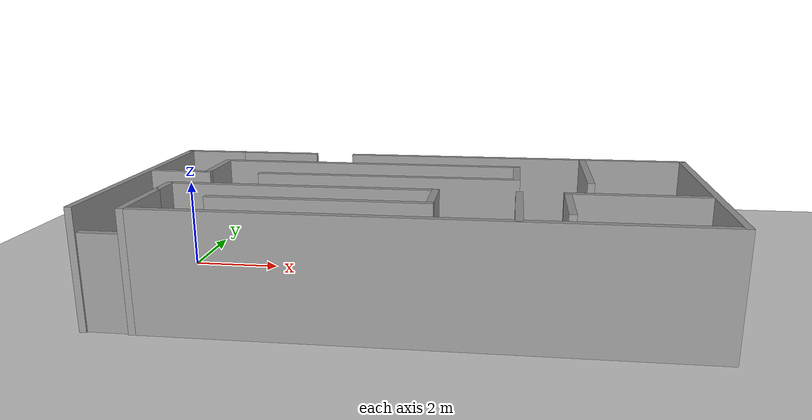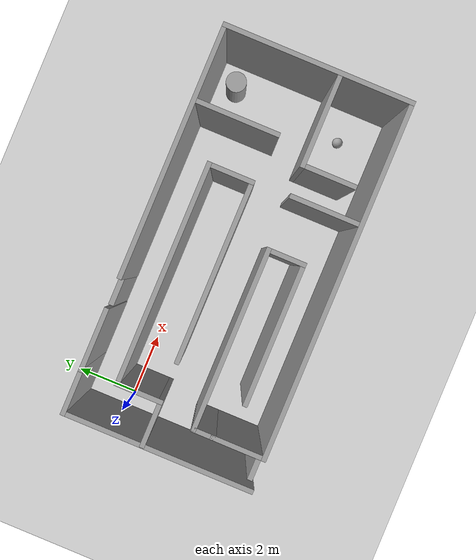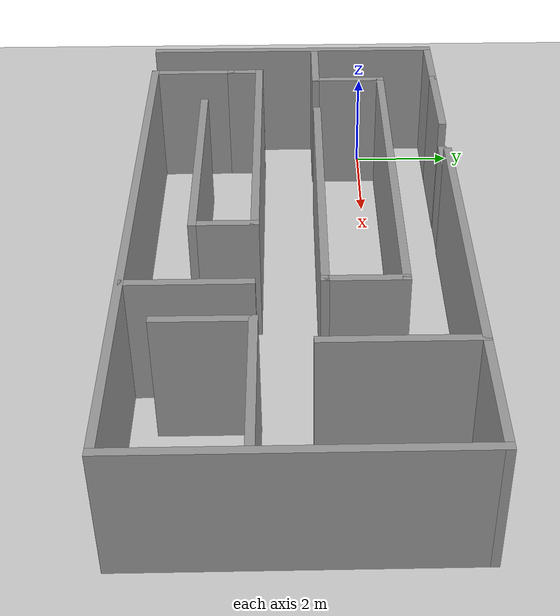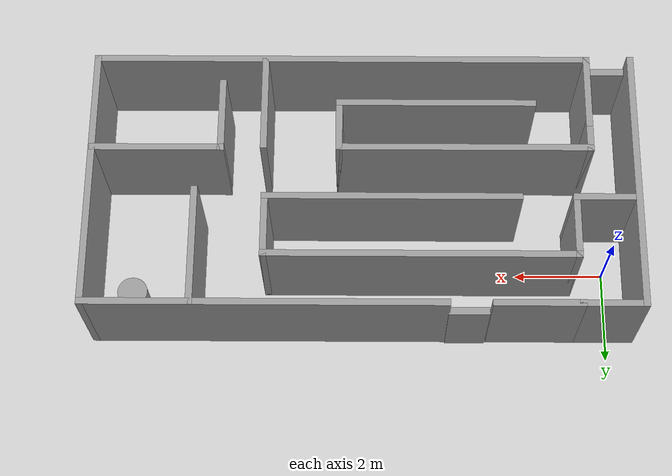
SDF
<sdf version="1.7">
 <world name="default">
  <light name="sun" type="directional">
   <pose>0 0 10 0 -0 0</pose>
   <diffuse>0.8 0.8 0.8 1</diffuse>
   <specular>0.2 0.2 0.2 1</specular>
   <attenuation>
    <range>1000</range>
    <constant>0.9</constant>
    <linear>0.01</linear>
    <quadratic>0.001</quadratic>
   </attenuation>
   <direction>-0.5 0.1 -0.9</direction>
   <spot><inner_angle>0</inner_angle><outer_angle>0</outer_angle><falloff>0</falloff></spot>
  </light>
  <model name="ground_plane">
   <static>1</static>
   <link name="link">
    <collision name="collision">
     <geometry><plane><normal>0 0 1</normal><size>100 100</size></plane></geometry>
     <surface>
      <contact><collide_bitmask>65535</collide_bitmask></contact>
      <friction><ode><mu>100</mu><mu2>50</mu2></ode></friction>
     </surface>
    </collision>
    <visual name="visual">
     <cast_shadows>0</cast_shadows>
     <geometry><plane><normal>0 0 1</normal><size>100 100</size></plane></geometry>
     <material>
      <script><uri>file://media/materials/scripts/gazebo.material</uri><name>Gazebo/Grey</name></script>
     </material>
    </visual>
   </link>
  </model>
  <gravity>0 0 -9.8</gravity>
  <magnetic_field>6e-06 2.3e-05 -4.2e-05</magnetic_field>
  <atmosphere type="adiabatic"/>
  <physics type="ode">
   <max_step_size>0.001</max_step_size>
   <real_time_factor>1</real_time_factor>
   <real_time_update_rate>1000</real_time_update_rate>
  </physics>
  <scene><ambient>0.4 0.4 0.4 1</ambient><background>0.7 0.7 0.7 1</background><shadows>1</shadows></scene>
  <audio><device>default</device></audio>
  <spherical_coordinates>
   <surface_model>EARTH_WGS84</surface_model>
   <latitude_deg>0</latitude_deg>
   <longitude_deg>0</longitude_deg>
   <elevation>0</elevation>
   <heading_deg>0</heading_deg>
  </spherical_coordinates>
  <model name="2doorsdown">
   <pose>5.49894 -0.220684 0 0 -0 0</pose>
   <link name="Door_0">
    <collision name="Door_0_Collision">
     <geometry><box><size>0.9 0.17 2</size></box></geometry>
     <pose>0 0 1 0 -0 0</pose>
    </collision>
    <visual name="Door_0_Visual">
     <pose>0 0 1 0 -0 0</pose>
     <geometry><box><size>0.9 0.17 2</size></box></geometry>
     <material>
      <script><uri>file://media/materials/scripts/gazebo.material</uri><name>Gazebo/Grey</name></script>
     </material>
    </visual>
    <pose>-2.3 1.7425 0 0 -0 0</pose>
   </link>
   <link name="Door_1">
    <collision name="Door_1_Collision">
     <geometry><box><size>0.9 0.17 2</size></box></geometry>
     <pose>0 0 1 0 -0 0</pose>
    </collision>
    <visual name="Door_1_Visual">
     <pose>0 0 1 0 -0 0</pose>
     <geometry><box><size>0.9 0.17 2</size></box></geometry>
     <material>
      <script><uri>file://media/materials/scripts/gazebo.material</uri><name>Gazebo/Grey</name></script>
     </material>
    </visual>
    <pose>-5.5232 -4.07753 0 0 -0 0</pose>
   </link>
   <link name="Wall_0">
    <collision name="Wall_0_Collision">
     <geometry><box><size>2 0.15 2.5</size></box></geometry>
     <pose>0 0 1.25 0 -0 0</pose>
    </collision>
    <visual name="Wall_0_Visual">
     <pose>0 0 1.25 0 -0 0</pose>
     <geometry><box><size>2 0.15 2.5</size></box></geometry>
     <material>
      <script><uri>file://media/materials/scripts/gazebo.material</uri><name>Gazebo/Grey</name></script>
      <ambient>1 1 1 1</ambient>
     </material>
     <meta><layer>0</layer></meta>
    </visual>
    <pose>-3.775 1.7225 0 0 -0 3.14159</pose>
   </link>
   <link name="Wall_11">
    <collision name="Wall_11_Collision">
     <geometry><box><size>6 0.15 2.5</size></box></geometry>
     <pose>0 0 1.25 0 -0 0</pose>
    </collision>
    <visual name="Wall_11_Visual">
     <pose>0 0 1.25 0 -0 0</pose>
     <geometry><box><size>6 0.15 2.5</size></box></geometry>
     <material>
      <script><uri>file://media/materials/scripts/gazebo.material</uri><name>Gazebo/Grey</name></script>
      <ambient>1 1 1 1</ambient>
     </material>
     <meta><layer>0</layer></meta>
    </visual>
    <pose>6.05 -1.2025 0 0 -0 1.5708</pose>
   </link>
   <link name="Wall_12">
    <collision name="Wall_12_Collision">
     <geometry><box><size>8 0.15 2.5</size></box></geometry>
     <pose>0 0 1.25 0 -0 0</pose>
    </collision>
    <visual name="Wall_12_Visual">
     <pose>0 0 1.25 0 -0 0</pose>
     <geometry><box><size>8 0.15 2.5</size></box></geometry>
     <material>
      <script><uri>file://media/materials/scripts/gazebo.material</uri><name>Gazebo/Grey</name></script>
      <ambient>1 1 1 1</ambient>
     </material>
     <meta><layer>0</layer></meta>
    </visual>
    <pose>2.125 1.7225 0 0 -0 3.14159</pose>
   </link>
   <link name="Wall_15">
    <collision name="Wall_15_Collision">
     <geometry><box><size>11.25 0.15 2.5</size></box></geometry>
     <pose>0 0 1.25 0 -0 0</pose>
    </collision>
    <visual name="Wall_15_Visual">
     <pose>0 0 1.25 0 -0 0</pose>
     <geometry><box><size>11.25 0.15 2.5</size></box></geometry>
     <material>
      <script><uri>file://media/materials/scripts/gazebo.material</uri><name>Gazebo/Grey</name></script>
      <ambient>1 1 1 1</ambient>
     </material>
     <meta><layer>0</layer></meta>
    </visual>
    <pose>0.5 -4.1275 0 0 -0 3.14159</pose>
   </link>
   <link name="Wall_17">
    <collision name="Wall_17_Collision">
     <geometry><box><size>1.5 0.15 2.5</size></box></geometry>
     <pose>0 0 1.25 0 -0 0</pose>
    </collision>
    <visual name="Wall_17_Visual">
     <pose>0 0 1.25 0 -0 0</pose>
     <geometry><box><size>1.5 0.15 2.5</size></box></geometry>
     <material>
      <script><uri>file://media/materials/scripts/gazebo.material</uri><name>Gazebo/Grey</name></script>
      <ambient>1 1 1 1</ambient>
     </material>
     <meta><layer>0</layer></meta>
    </visual>
    <pose>-4.67843 -0.06607 0 0 -0 -1.5708</pose>
   </link>
   <link name="Wall_18">
    <collision name="Wall_18_Collision">
     <geometry><box><size>1.5 0.15 2.5</size></box></geometry>
     <pose>0 0 1.25 0 -0 0</pose>
    </collision>
    <visual name="Wall_18_Visual">
     <pose>0 0 1.25 0 -0 0</pose>
     <geometry><box><size>1.5 0.15 2.5</size></box></geometry>
     <material>
      <script><uri>file://media/materials/scripts/gazebo.material</uri><name>Gazebo/Grey</name></script>
      <ambient>1 1 1 1</ambient>
     </material>
     <meta><layer>0</layer></meta>
    </visual>
    <pose>-5.35343 -0.74107 0 0 -0 3.14159</pose>
   </link>
   <link name="Wall_21">
    <collision name="Wall_21_Collision">
     <geometry><box><size>1.75 0.15 2.5</size></box></geometry>
     <pose>0 0 1.25 0 -0 0</pose>
    </collision>
    <visual name="Wall_21_Visual">
     <pose>0 0 1.25 0 -0 0</pose>
     <geometry><box><size>1.75 0.15 2.5</size></box></geometry>
     <material>
      <script><uri>file://media/materials/scripts/gazebo.material</uri><name>Gazebo/Grey</name></script>
      <ambient>1 1 1 1</ambient>
     </material>
     <meta><layer>0</layer></meta>
    </visual>
    <pose>-5.05 -3.3275 0 0 -0 1.5708</pose>
   </link>
   <link name="Wall_22">
    <collision name="Wall_22_Collision">
     <geometry><box><size>0.75 0.15 2.5</size></box></geometry>
     <pose>0 0 1.25 0 -0 0</pose>
    </collision>
    <visual name="Wall_22_Visual">
     <pose>0 0 1.25 0 -0 0</pose>
     <geometry><box><size>0.75 0.15 2.5</size></box></geometry>
     <material>
      <script><uri>file://media/materials/scripts/gazebo.material</uri><name>Gazebo/Grey</name></script>
      <ambient>1 1 1 1</ambient>
     </material>
     <meta><layer>0</layer></meta>
    </visual>
    <pose>-5.05 -2.2275 0 0 -0 1.5708</pose>
   </link>
   <link name="Wall_23">
    <collision name="Wall_23_Collision">
     <geometry><box><size>5.75 0.15 2.5</size></box></geometry>
     <pose>0 0 1.25 0 -0 0</pose>
    </collision>
    <visual name="Wall_23_Visual">
     <pose>0 0 1.25 0 -0 0</pose>
     <geometry><box><size>5.75 0.15 2.5</size></box></geometry>
     <material>
      <script><uri>file://media/materials/scripts/gazebo.material</uri><name>Gazebo/Grey</name></script>
      <ambient>1 1 1 1</ambient>
     </material>
     <meta><layer>0</layer></meta>
    </visual>
    <pose>-2.25 -1.9275 0 0 -0 0</pose>
   </link>
   <link name="Wall_24">
    <collision name="Wall_24_Collision">
     <geometry><box><size>1.25 0.15 2.5</size></box></geometry>
     <pose>0 0 1.25 0 -0 0</pose>
    </collision>
    <visual name="Wall_24_Visual">
     <pose>0 0 1.25 0 -0 0</pose>
     <geometry><box><size>1.25 0.15 2.5</size></box></geometry>
     <material>
      <script><uri>file://media/materials/scripts/gazebo.material</uri><name>Gazebo/Grey</name></script>
      <ambient>1 1 1 1</ambient>
     </material>
     <meta><layer>0</layer></meta>
    </visual>
    <pose>0.55 -2.4775 0 0 -0 -1.5708</pose>
   </link>
   <link name="Wall_25">
    <collision name="Wall_25_Collision">
     <geometry><box><size>4.5 0.15 2.5</size></box></geometry>
     <pose>0 0 1.25 0 -0 0</pose>
    </collision>
    <visual name="Wall_25_Visual">
     <pose>0 0 1.25 0 -0 0</pose>
     <geometry><box><size>4.5 0.15 2.5</size></box></geometry>
     <material>
      <script><uri>file://media/materials/scripts/gazebo.material</uri><name>Gazebo/Grey</name></script>
      <ambient>1 1 1 1</ambient>
     </material>
     <meta><layer>0</layer></meta>
    </visual>
    <pose>-1.625 -3.0275 0 0 -0 3.14159</pose>
   </link>
   <link name="Wall_27">
    <collision name="Wall_27_Collision">
     <geometry><box><size>2.25 0.15 2.5</size></box></geometry>
     <pose>0 0 1.25 0 -0 0</pose>
    </collision>
    <visual name="Wall_27_Visual">
     <pose>0 0 1.25 0 -0 0</pose>
     <geometry><box><size>2.25 0.15 2.5</size></box></geometry>
     <material>
      <script><uri>file://media/materials/scripts/gazebo.material</uri><name>Gazebo/Grey</name></script>
      <ambient>1 1 1 1</ambient>
     </material>
     <meta><layer>0</layer></meta>
    </visual>
    <pose>2.22878 -3.01587 0 0 -0 -1.5708</pose>
   </link>
   <link name="Wall_29">
    <collision name="Wall_29_Collision">
     <geometry><box><size>3 0.15 2.5</size></box></geometry>
     <pose>0 0 1.25 0 -0 0</pose>
    </collision>
    <visual name="Wall_29_Visual">
     <pose>0 0 1.25 0 -0 0</pose>
     <geometry><box><size>3 0.15 2.5</size></box></geometry>
     <material>
      <script><uri>file://media/materials/scripts/gazebo.material</uri><name>Gazebo/Grey</name></script>
      <ambient>1 1 1 1</ambient>
     </material>
     <meta><layer>0</layer></meta>
    </visual>
    <pose>4.60596 -1.90504 0 0 -0 3.14159</pose>
   </link>
   <link name="Wall_3">
    <collision name="Wall_3_Collision">
     <geometry><box><size>7 0.15 2.5</size></box></geometry>
     <pose>0 0 1.25 0 -0 0</pose>
    </collision>
    <visual name="Wall_3_Visual">
     <pose>0 0 1.25 0 -0 0</pose>
     <geometry><box><size>7 0.15 2.5</size></box></geometry>
     <material>
      <script><uri>file://media/materials/scripts/gazebo.material</uri><name>Gazebo/Grey</name></script>
      <ambient>1 1 1 1</ambient>
     </material>
     <meta><layer>0</layer></meta>
    </visual>
    <pose>-1.25343 0.60893 0 0 -0 0</pose>
   </link>
   <link name="Wall_30">
    <collision name="Wall_30_Collision">
     <geometry><box><size>1.75 0.15 2.5</size></box></geometry>
     <pose>0 0 1.25 0 -0 0</pose>
    </collision>
    <visual name="Wall_30_Visual">
     <pose>0 0 1.25 0 -0 0</pose>
     <geometry><box><size>1.75 0.15 2.5</size></box></geometry>
     <material>
      <script><uri>file://media/materials/scripts/gazebo.material</uri><name>Gazebo/Grey</name></script>
      <ambient>1 1 1 1</ambient>
     </material>
     <meta><layer>0</layer></meta>
    </visual>
    <pose>3.18096 -2.70504 0 0 -0 -1.5708</pose>
   </link>
   <link name="Wall_32">
    <collision name="Wall_32_Collision">
     <geometry><box><size>2.75 0.15 2.5</size></box></geometry>
     <pose>0 0 1.25 0 -0 0</pose>
    </collision>
    <visual name="Wall_32_Visual">
     <pose>0 0 1.25 0 -0 0</pose>
     <geometry><box><size>2.75 0.15 2.5</size></box></geometry>
     <material>
      <script><uri>file://media/materials/scripts/gazebo.material</uri><name>Gazebo/Grey</name></script>
      <ambient>1 1 1 1</ambient>
     </material>
     <meta><layer>0</layer></meta>
    </visual>
    <pose>3.71923 0.414643 0 0 -0 -1.5708</pose>
   </link>
   <link name="Wall_4">
    <collision name="Wall_4_Collision">
     <geometry><box><size>1.5 0.15 2.5</size></box></geometry>
     <pose>0 0 1.25 0 -0 0</pose>
    </collision>
    <visual name="Wall_4_Visual">
     <pose>0 0 1.25 0 -0 0</pose>
     <geometry><box><size>1.5 0.15 2.5</size></box></geometry>
     <material>
      <script><uri>file://media/materials/scripts/gazebo.material</uri><name>Gazebo/Grey</name></script>
      <ambient>1 1 1 1</ambient>
     </material>
     <meta><layer>0</layer></meta>
    </visual>
    <pose>2.17157 -0.06607 0 0 -0 -1.5708</pose>
   </link>
   <link name="Wall_5">
    <collision name="Wall_5_Collision">
     <geometry><box><size>5.75 0.15 2.5</size></box></geometry>
     <pose>0 0 1.25 0 -0 0</pose>
    </collision>
    <visual name="Wall_5_Visual">
     <pose>0 0 1.25 0 -0 0</pose>
     <geometry><box><size>5.75 0.15 2.5</size></box></geometry>
     <material>
      <script><uri>file://media/materials/scripts/gazebo.material</uri><name>Gazebo/Grey</name></script>
      <ambient>1 1 1 1</ambient>
     </material>
     <meta><layer>0</layer></meta>
    </visual>
    <pose>-0.628427 -0.74107 0 0 -0 3.14159</pose>
   </link>
   <link name="Wall_8">
    <collision name="Wall_8_Collision">
     <geometry><box><size>1.5 0.15 2.5</size></box></geometry>
     <pose>0 0 1.25 0 -0 0</pose>
    </collision>
    <visual name="Wall_8_Visual">
     <pose>0 0 1.25 0 -0 0</pose>
     <geometry><box><size>1.5 0.15 2.5</size></box></geometry>
     <material>
      <script><uri>file://media/materials/scripts/gazebo.material</uri><name>Gazebo/Grey</name></script>
      <ambient>1 1 1 1</ambient>
     </material>
     <meta><layer>0</layer></meta>
    </visual>
    <pose>-5.375 1.7225 0 0 -0 3.14159</pose>
   </link>
   <link name="Wall_9">
    <collision name="Wall_9_Collision">
     <geometry><box><size>6 0.15 2.5</size></box></geometry>
     <pose>0 0 1.25 0 -0 0</pose>
    </collision>
    <visual name="Wall_9_Visual">
     <pose>0 0 1.25 0 -0 0</pose>
     <geometry><box><size>6 0.15 2.5</size></box></geometry>
     <material>
      <script><uri>file://media/materials/scripts/gazebo.material</uri><name>Gazebo/Grey</name></script>
      <ambient>1 1 1 1</ambient>
     </material>
     <meta><layer>0</layer></meta>
    </visual>
    <pose>-6.05 -1.2025 0 0 -0 -1.5708</pose>
   </link>
   <static>1</static>
  </model>
  <model name="unit_cylinder">
   <pose>10.6615 0.75668 0.499993 0 -0 0.027025</pose>
   <link name="link">
    <inertial>
     <mass>1</mass>
     <inertia><ixx>0.145833</ixx><ixy>0</ixy><ixz>0</ixz><iyy>0.145833</iyy><iyz>0</iyz><izz>0.125</izz></inertia>
    </inertial>
    <collision name="collision">
     <geometry><cylinder><radius>0.334807</radius><length>1</length></cylinder></geometry>
    </collision>
    <visual name="visual">
     <geometry><cylinder><radius>0.334807</radius><length>1</length></cylinder></geometry>
     <material>
      <script><name>Gazebo/Grey</name><uri>file://media/materials/scripts/gazebo.material</uri></script>
     </material>
    </visual>
   </link>
  </model>
  <model name="unit_sphere">
   <pose>10.3508 -3.055 0.173066 0.016918 -0.028761 -0.031843</pose>
   <link name="link">
    <inertial>
     <mass>1</mass>
     <inertia><ixx>0.1</ixx><ixy>0</ixy><ixz>0</ixz><iyy>0.1</iyy><iyz>0</iyz><izz>0.1</izz></inertia>
    </inertial>
    <collision name="collision"><geometry><sphere><radius>0.173066</radius></sphere></geometry></collision>
    <visual name="visual">
     <geometry><sphere><radius>0.173066</radius></sphere></geometry>
     <material>
      <script><name>Gazebo/Grey</name><uri>file://media/materials/scripts/gazebo.material</uri></script>
     </material>
    </visual>
   </link>
  </model>
 </world>
</sdf>
